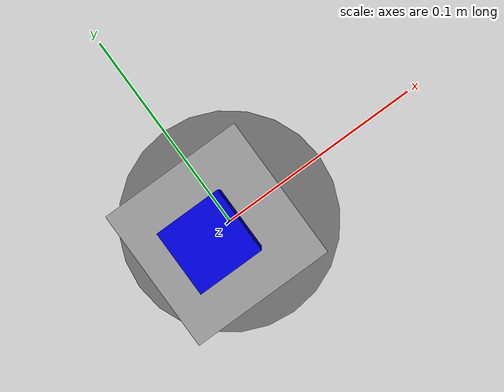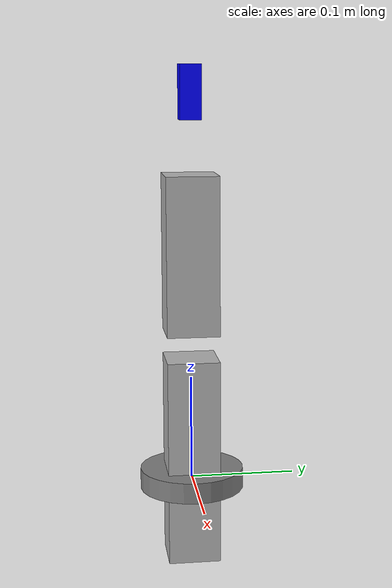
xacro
<?xml version="1.0"?>
<robot name="ufactory850" xmlns:xacro="http://ros.org/wiki/xacro">
  <link name="base_link">
    <visual>
      <geometry><cylinder radius="0.05" length="0.02"/></geometry>
      <material name="gray"><color rgba="0.5 0.5 0.5 1"/></material>
    </visual>
  </link>
  <joint name="joint1" type="revolute">
    <parent link="base_link"/>
    <child link="link1"/>
    <origin xyz="0 0 0.02" rpy="0 0 0"/>
    <axis xyz="0 0 1"/>
    <limit lower="-3.14" upper="3.14" effort="5" velocity="2"/>
  </joint>
  <link name="link1">
    <visual>
      <geometry><box size="0.05 0.05 0.2"/></geometry>
      <material name="silver"><color rgba="0.7 0.7 0.7 1"/></material>
    </visual>
  </link>
  <joint name="joint2" type="revolute">
    <parent link="link1"/>
    <child link="link2"/>
    <origin xyz="0 0 0.2" rpy="0 0 0"/>
    <axis xyz="0 1 0"/>
    <limit lower="-1.57" upper="1.57" effort="5" velocity="2"/>
  </joint>
  <link name="link2">
    <visual>
      <geometry><box size="0.05 0.05 0.15"/></geometry>
      <material name="silver"/>
    </visual>
  </link>
  <joint name="joint3" type="revolute">
    <parent link="link2"/>
    <child link="gripper"/>
    <origin xyz="0 0 0.15" rpy="0 0 0"/>
    <axis xyz="0 1 0"/>
    <limit lower="-1.57" upper="1.57" effort="5" velocity="2"/>
  </joint>
  <link name="gripper">
    <visual>
      <geometry><box size="0.02 0.02 0.05"/></geometry>
      <material name="blue"><color rgba="0 0 1 1"/></material>
    </visual>
  </link>
</robot>
